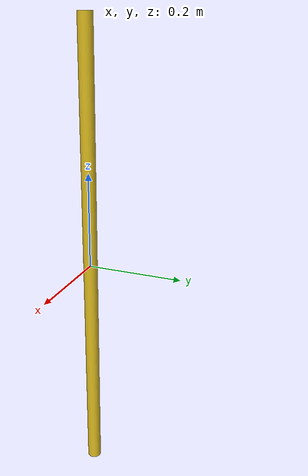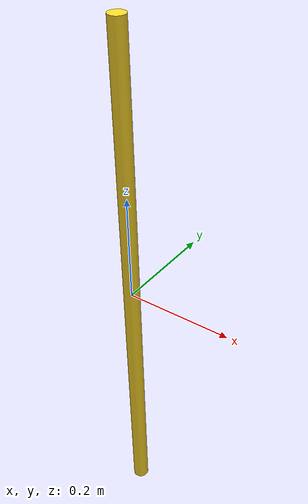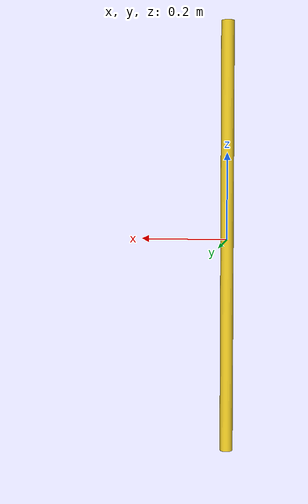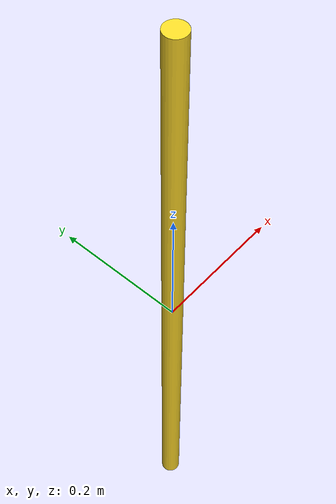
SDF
<?xml version="1.0"?>
<sdf version="1.9">
  <model name="conduit_yellow">
    <static>true</static>

    <plugin filename="gz-sim-label-system" name="gz::sim::systems::Label">
      <label>1</label>
    </plugin>

    <link name="conduit">
      <pose>0 0 0 0 0 0</pose>
      <visual name="vis">
        <geometry>
          <cylinder><radius>0.015</radius><length>1.0</length></cylinder>
        </geometry>
        <material>
          <ambient>0.95 0.80 0.10 1</ambient>
          <diffuse>1.0 0.85 0.15 1</diffuse>
        </material>
      </visual>
      <collision name="col">
        <geometry>
          <cylinder><radius>0.015</radius><length>1.0</length></cylinder>
        </geometry>
      </collision>
    </link>

  </model>
</sdf>
